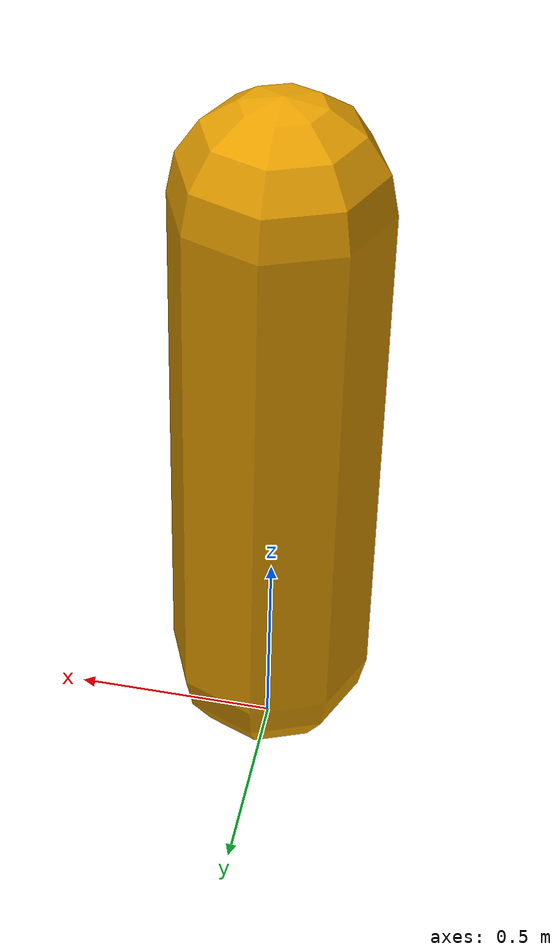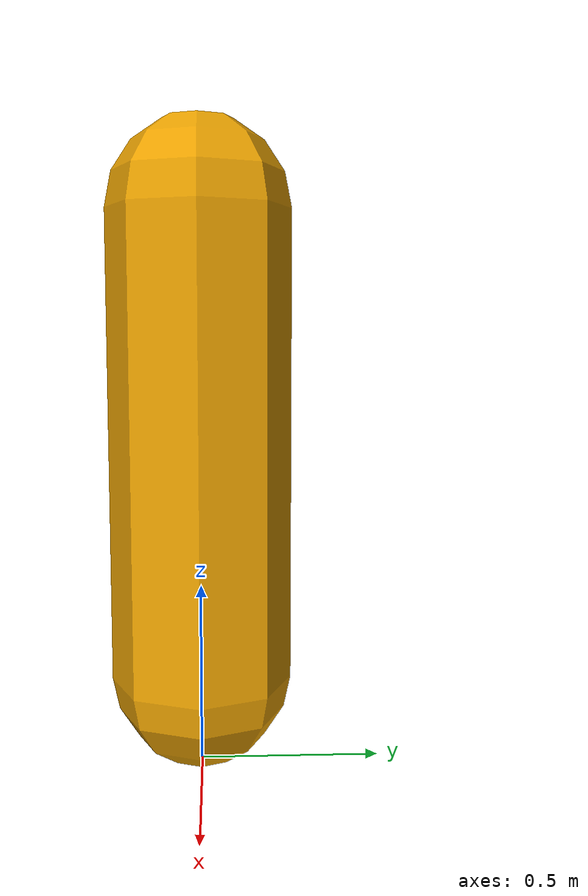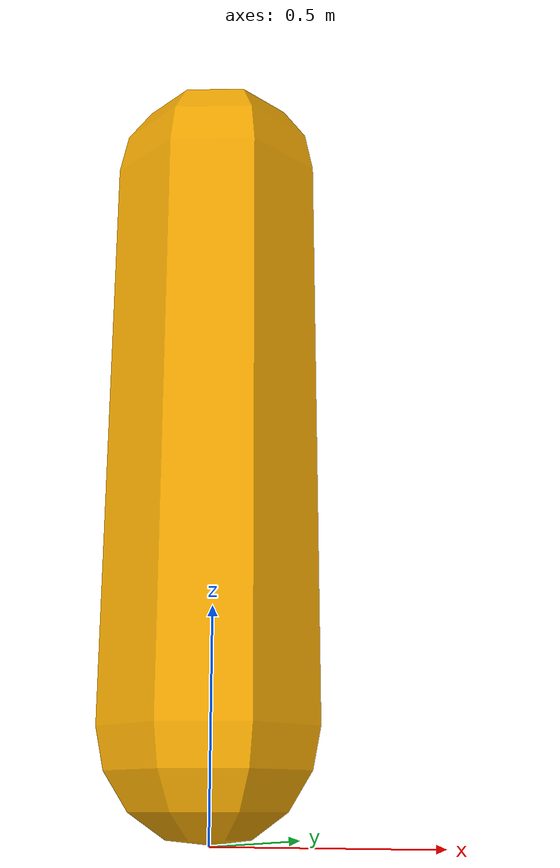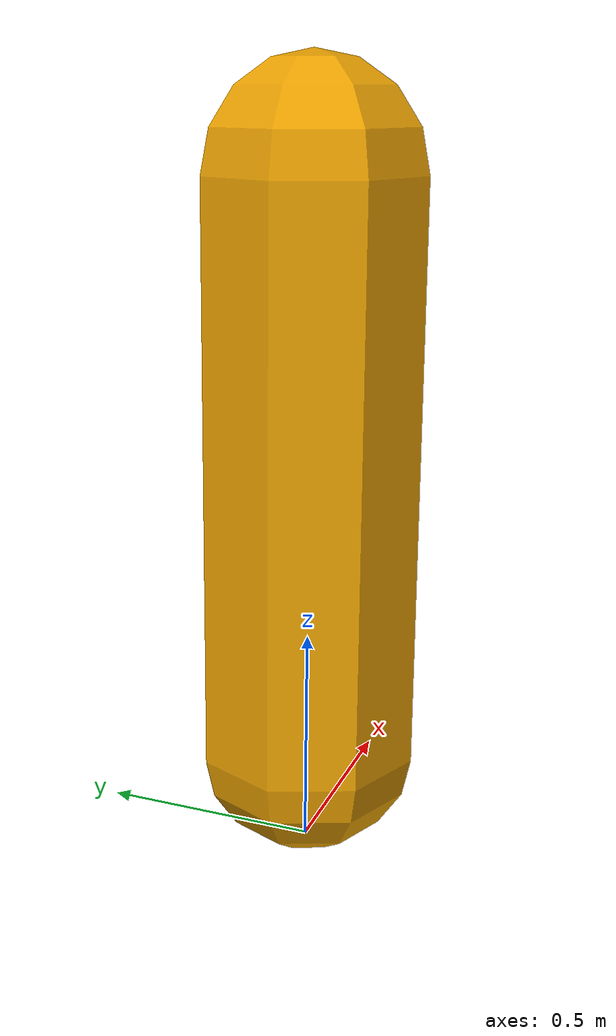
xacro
<?xml version="1.0"?>

<robot name="iai_operator" xmlns:xacro="http://ros.org/wiki/xacro">

    <xacro:property name="pi" value="3.1415939331054688" />

  <xacro:macro name="iai_operator_macro" >

    <link name="base_link">
      <inertial>
        <mass value="1" />
        <origin xyz="0 0 0" />
        <inertia ixx="0.001" ixy="0.0" ixz="0.0" iyy="0.001" iyz="0.0" izz="0.001" />
      </inertial>
        <!--MAIN_BODY-->
        <visual>
	  <origin xyz="0 0 0" rpy="0 0 0" />
	  <geometry>
	    <mesh filename="package://iai_rescue_human_operator/meshes/operator_capsule.stl"/>
	  </geometry>
	  </visual>
        <collision>
	  <origin xyz="0 0 0" rpy="0 0 0" />
	  <geometry>
	    <mesh filename="package://iai_rescue_human_operator/meshes/operator_capsule.stl"/>
	  </geometry>
        </collision>
    </link>
    <gazebo>
      <plugin filename="libiai_operator_controller.so" name="SherpaOperatorCtr">
	<commandTopic>cmd_vel</commandTopic>
	<odometryTopic>world</odometryTopic>
	<odometryFrame>world</odometryFrame>
	<odometryRate>40.0</odometryRate>
	<robotBaseFrame>base_link</robotBaseFrame>
    </plugin>
  </gazebo>

  </xacro:macro>
    <iai_operator_macro/>
</robot>
